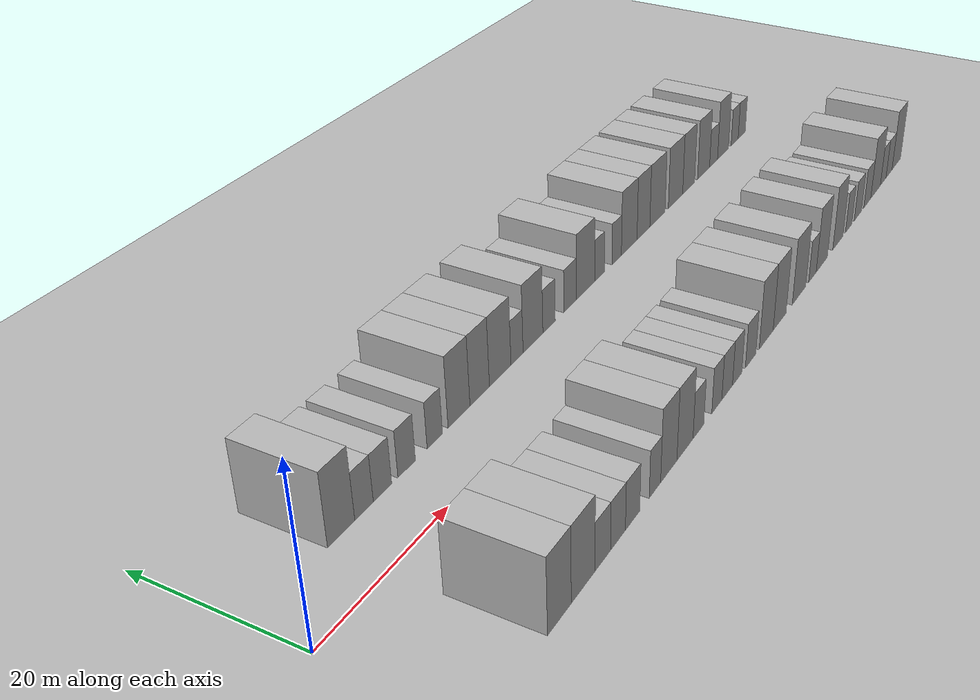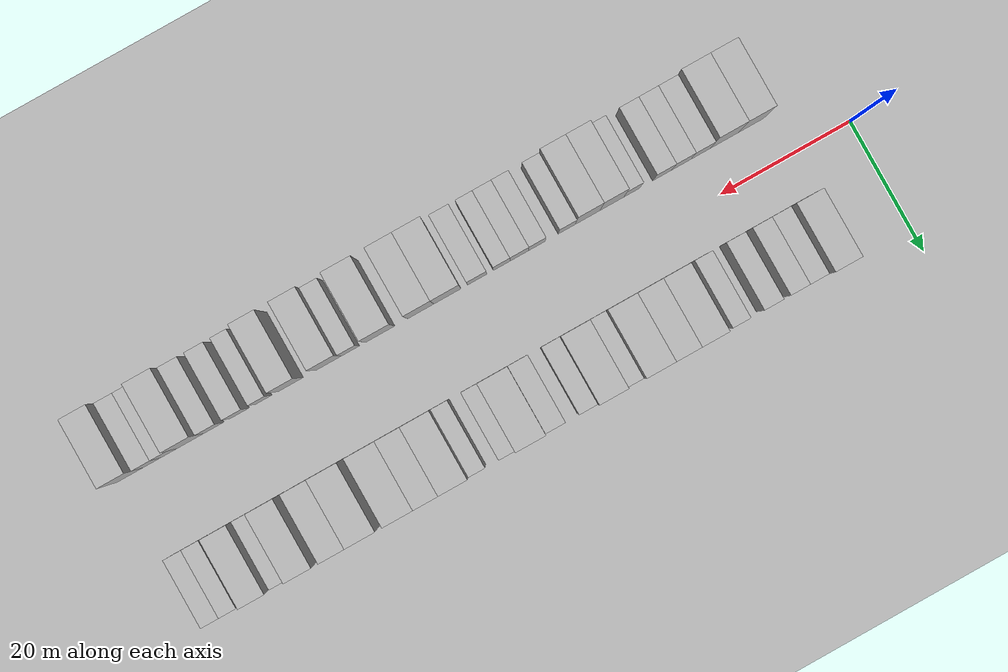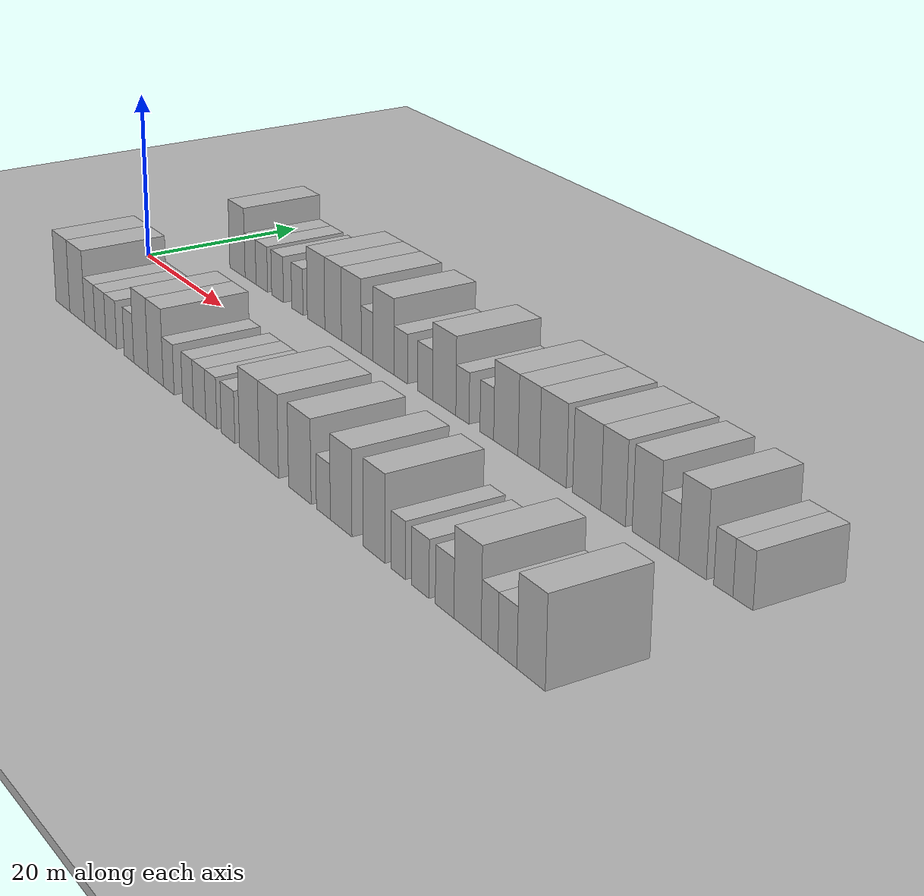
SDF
<sdf version="1.6">
 <world name="default">
  <include><name>ground_plane_1</name><uri>model://HANNAS_ground_plane</uri></include>
  <include>
   <name>ground_plane_2</name>
   <uri>model://HANNAS_ground_plane</uri>
   <pose>100 0 0  0 0 0</pose>
  </include>
  <model name="building_1">
   <static>1</static>
   <pose>11.9980 11.0000 0 0.000000 0.000000 1.570796</pose>
   <link name="link">
    <pose>0 0 4.50 0 0 0</pose>
    <collision name="collision"><geometry><box><size>10.0000 3.9959 9.0000</size></box></geometry></collision>
    <visual name="visual">
     <cast_shadows>0</cast_shadows>
     <geometry><box><size>10.0000 3.9959 9.0000</size></box></geometry>
     <material>
      <script>
       <uri>model://HANNAS_wall/materials/scripts</uri>
       <uri>model://HANNAS_wall/materials/textures</uri>
       <name>vrc/HANNAS_wall</name>
      </script>
     </material>
    </visual>
   </link>
  </model>
  <model name="building_2">
   <static>1</static>
   <pose>15.4072 11.0000 0 0.000000 0.000000 1.570796</pose>
   <link name="link">
    <pose>0 0 3.00 0 0 0</pose>
    <collision name="collision"><geometry><box><size>10.0000 2.8226 6.0000</size></box></geometry></collision>
    <visual name="visual">
     <cast_shadows>0</cast_shadows>
     <geometry><box><size>10.0000 2.8226 6.0000</size></box></geometry>
     <material>
      <script>
       <uri>model://HANNAS_wall/materials/scripts</uri>
       <uri>model://HANNAS_wall/materials/textures</uri>
       <name>vrc/HANNAS_wall</name>
      </script>
     </material>
    </visual>
   </link>
  </model>
  <model name="building_3">
   <static>1</static>
   <pose>18.2727 11.0000 0 0.000000 0.000000 1.570796</pose>
   <link name="link">
    <pose>0 0 3.00 0 0 0</pose>
    <collision name="collision"><geometry><box><size>10.0000 2.9083 6.0000</size></box></geometry></collision>
    <visual name="visual">
     <cast_shadows>0</cast_shadows>
     <geometry><box><size>10.0000 2.9083 6.0000</size></box></geometry>
     <material>
      <script>
       <uri>model://HANNAS_wall/materials/scripts</uri>
       <uri>model://HANNAS_wall/materials/textures</uri>
       <name>vrc/HANNAS_wall</name>
      </script>
     </material>
    </visual>
   </link>
  </model>
  <model name="building_4">
   <static>1</static>
   <pose>22.1791 11.0000 0 0.000000 0.000000 1.570796</pose>
   <link name="link">
    <pose>0 0 3.00 0 0 0</pose>
    <collision name="collision"><geometry><box><size>10.0000 2.9046 6.0000</size></box></geometry></collision>
    <visual name="visual">
     <cast_shadows>0</cast_shadows>
     <geometry><box><size>10.0000 2.9046 6.0000</size></box></geometry>
     <material>
      <script>
       <uri>model://HANNAS_wall/materials/scripts</uri>
       <uri>model://HANNAS_wall/materials/textures</uri>
       <name>vrc/HANNAS_wall</name>
      </script>
     </material>
    </visual>
   </link>
  </model>
  <model name="building_5">
   <static>1</static>
   <pose>26.9787 11.0000 0 0.000000 0.000000 1.570796</pose>
   <link name="link">
    <pose>0 0 3.00 0 0 0</pose>
    <collision name="collision"><geometry><box><size>10.0000 2.6946 6.0000</size></box></geometry></collision>
    <visual name="visual">
     <cast_shadows>0</cast_shadows>
     <geometry><box><size>10.0000 2.6946 6.0000</size></box></geometry>
     <material>
      <script>
       <uri>model://HANNAS_wall/materials/scripts</uri>
       <uri>model://HANNAS_wall/materials/textures</uri>
       <name>vrc/HANNAS_wall</name>
      </script>
     </material>
    </visual>
   </link>
  </model>
  <model name="building_6">
   <static>1</static>
   <pose>31.3501 11.0000 0 0.000000 0.000000 1.570796</pose>
   <link name="link">
    <pose>0 0 4.50 0 0 0</pose>
    <collision name="collision"><geometry><box><size>10.0000 4.0482 9.0000</size></box></geometry></collision>
    <visual name="visual">
     <cast_shadows>0</cast_shadows>
     <geometry><box><size>10.0000 4.0482 9.0000</size></box></geometry>
     <material>
      <script>
       <uri>model://HANNAS_wall/materials/scripts</uri>
       <uri>model://HANNAS_wall/materials/textures</uri>
       <name>vrc/HANNAS_wall</name>
      </script>
     </material>
    </visual>
   </link>
  </model>
  <model name="building_7">
   <static>1</static>
   <pose>35.2538 11.0000 0 0.000000 0.000000 1.570796</pose>
   <link name="link">
    <pose>0 0 4.50 0 0 0</pose>
    <collision name="collision"><geometry><box><size>10.0000 3.7592 9.0000</size></box></geometry></collision>
    <visual name="visual">
     <cast_shadows>0</cast_shadows>
     <geometry><box><size>10.0000 3.7592 9.0000</size></box></geometry>
     <material>
      <script>
       <uri>model://HANNAS_wall/materials/scripts</uri>
       <uri>model://HANNAS_wall/materials/textures</uri>
       <name>vrc/HANNAS_wall</name>
      </script>
     </material>
    </visual>
   </link>
  </model>
  <model name="building_8">
   <static>1</static>
   <pose>39.3070 11.0000 0 0.000000 0.000000 1.570796</pose>
   <link name="link">
    <pose>0 0 4.50 0 0 0</pose>
    <collision name="collision"><geometry><box><size>10.0000 4.3472 9.0000</size></box></geometry></collision>
    <visual name="visual">
     <cast_shadows>0</cast_shadows>
     <geometry><box><size>10.0000 4.3472 9.0000</size></box></geometry>
     <material>
      <script>
       <uri>model://HANNAS_wall/materials/scripts</uri>
       <uri>model://HANNAS_wall/materials/textures</uri>
       <name>vrc/HANNAS_wall</name>
      </script>
     </material>
    </visual>
   </link>
  </model>
  <model name="building_9">
   <static>1</static>
   <pose>42.7500 11.0000 0 0.000000 0.000000 1.570796</pose>
   <link name="link">
    <pose>0 0 3.00 0 0 0</pose>
    <collision name="collision"><geometry><box><size>10.0000 2.5387 6.0000</size></box></geometry></collision>
    <visual name="visual">
     <cast_shadows>0</cast_shadows>
     <geometry><box><size>10.0000 2.5387 6.0000</size></box></geometry>
     <material>
      <script>
       <uri>model://HANNAS_wall/materials/scripts</uri>
       <uri>model://HANNAS_wall/materials/textures</uri>
       <name>vrc/HANNAS_wall</name>
      </script>
     </material>
    </visual>
   </link>
  </model>
  <model name="building_10">
   <static>1</static>
   <pose>46.1682 11.0000 0 0.000000 0.000000 1.570796</pose>
   <link name="link">
    <pose>0 0 4.50 0 0 0</pose>
    <collision name="collision"><geometry><box><size>10.0000 4.2977 9.0000</size></box></geometry></collision>
    <visual name="visual">
     <cast_shadows>0</cast_shadows>
     <geometry><box><size>10.0000 4.2977 9.0000</size></box></geometry>
     <material>
      <script>
       <uri>model://HANNAS_wall/materials/scripts</uri>
       <uri>model://HANNAS_wall/materials/textures</uri>
       <name>vrc/HANNAS_wall</name>
      </script>
     </material>
    </visual>
   </link>
  </model>
  <model name="building_11">
   <static>1</static>
   <pose>49.7075 11.0000 0 0.000000 0.000000 1.570796</pose>
   <link name="link">
    <pose>0 0 3.00 0 0 0</pose>
    <collision name="collision"><geometry><box><size>10.0000 2.7811 6.0000</size></box></geometry></collision>
    <visual name="visual">
     <cast_shadows>0</cast_shadows>
     <geometry><box><size>10.0000 2.7811 6.0000</size></box></geometry>
     <material>
      <script>
       <uri>model://HANNAS_wall/materials/scripts</uri>
       <uri>model://HANNAS_wall/materials/textures</uri>
       <name>vrc/HANNAS_wall</name>
      </script>
     </material>
    </visual>
   </link>
  </model>
  <model name="building_12">
   <static>1</static>
   <pose>54.5889 11.0000 0 0.000000 0.000000 1.570796</pose>
   <link name="link">
    <pose>0 0 3.00 0 0 0</pose>
    <collision name="collision"><geometry><box><size>10.0000 2.9816 6.0000</size></box></geometry></collision>
    <visual name="visual">
     <cast_shadows>0</cast_shadows>
     <geometry><box><size>10.0000 2.9816 6.0000</size></box></geometry>
     <material>
      <script>
       <uri>model://HANNAS_wall/materials/scripts</uri>
       <uri>model://HANNAS_wall/materials/textures</uri>
       <name>vrc/HANNAS_wall</name>
      </script>
     </material>
    </visual>
   </link>
  </model>
  <model name="building_13">
   <static>1</static>
   <pose>58.3121 11.0000 0 0.000000 0.000000 1.570796</pose>
   <link name="link">
    <pose>0 0 4.50 0 0 0</pose>
    <collision name="collision"><geometry><box><size>10.0000 4.4650 9.0000</size></box></geometry></collision>
    <visual name="visual">
     <cast_shadows>0</cast_shadows>
     <geometry><box><size>10.0000 4.4650 9.0000</size></box></geometry>
     <material>
      <script>
       <uri>model://HANNAS_wall/materials/scripts</uri>
       <uri>model://HANNAS_wall/materials/textures</uri>
       <name>vrc/HANNAS_wall</name>
      </script>
     </material>
    </visual>
   </link>
  </model>
  <model name="building_14">
   <static>1</static>
   <pose>61.7764 11.0000 0 0.000000 0.000000 1.570796</pose>
   <link name="link">
    <pose>0 0 3.00 0 0 0</pose>
    <collision name="collision"><geometry><box><size>10.0000 2.4636 6.0000</size></box></geometry></collision>
    <visual name="visual">
     <cast_shadows>0</cast_shadows>
     <geometry><box><size>10.0000 2.4636 6.0000</size></box></geometry>
     <material>
      <script>
       <uri>model://HANNAS_wall/materials/scripts</uri>
       <uri>model://HANNAS_wall/materials/textures</uri>
       <name>vrc/HANNAS_wall</name>
      </script>
     </material>
    </visual>
   </link>
  </model>
  <model name="building_15">
   <static>1</static>
   <pose>66.2464 11.0000 0 0.000000 0.000000 1.570796</pose>
   <link name="link">
    <pose>0 0 3.00 0 0 0</pose>
    <collision name="collision"><geometry><box><size>10.0000 2.4763 6.0000</size></box></geometry></collision>
    <visual name="visual">
     <cast_shadows>0</cast_shadows>
     <geometry><box><size>10.0000 2.4763 6.0000</size></box></geometry>
     <material>
      <script>
       <uri>model://HANNAS_wall/materials/scripts</uri>
       <uri>model://HANNAS_wall/materials/textures</uri>
       <name>vrc/HANNAS_wall</name>
      </script>
     </material>
    </visual>
   </link>
  </model>
  <model name="building_16">
   <static>1</static>
   <pose>69.6236 11.0000 0 0.000000 0.000000 1.570796</pose>
   <link name="link">
    <pose>0 0 4.50 0 0 0</pose>
    <collision name="collision"><geometry><box><size>10.0000 4.2780 9.0000</size></box></geometry></collision>
    <visual name="visual">
     <cast_shadows>0</cast_shadows>
     <geometry><box><size>10.0000 4.2780 9.0000</size></box></geometry>
     <material>
      <script>
       <uri>model://HANNAS_wall/materials/scripts</uri>
       <uri>model://HANNAS_wall/materials/textures</uri>
       <name>vrc/HANNAS_wall</name>
      </script>
     </material>
    </visual>
   </link>
  </model>
  <model name="building_17">
   <static>1</static>
   <pose>73.5857 11.0000 0 0.000000 0.000000 1.570796</pose>
   <link name="link">
    <pose>0 0 4.50 0 0 0</pose>
    <collision name="collision"><geometry><box><size>10.0000 3.6463 9.0000</size></box></geometry></collision>
    <visual name="visual">
     <cast_shadows>0</cast_shadows>
     <geometry><box><size>10.0000 3.6463 9.0000</size></box></geometry>
     <material>
      <script>
       <uri>model://HANNAS_wall/materials/scripts</uri>
       <uri>model://HANNAS_wall/materials/textures</uri>
       <name>vrc/HANNAS_wall</name>
      </script>
     </material>
    </visual>
   </link>
  </model>
  <model name="building_18">
   <static>1</static>
   <pose>77.6428 11.0000 0 0.000000 0.000000 1.570796</pose>
   <link name="link">
    <pose>0 0 4.50 0 0 0</pose>
    <collision name="collision"><geometry><box><size>10.0000 4.4679 9.0000</size></box></geometry></collision>
    <visual name="visual">
     <cast_shadows>0</cast_shadows>
     <geometry><box><size>10.0000 4.4679 9.0000</size></box></geometry>
     <material>
      <script>
       <uri>model://HANNAS_wall/materials/scripts</uri>
       <uri>model://HANNAS_wall/materials/textures</uri>
       <name>vrc/HANNAS_wall</name>
      </script>
     </material>
    </visual>
   </link>
  </model>
  <model name="building_19">
   <static>1</static>
   <pose>83.0998 11.0000 0 0.000000 0.000000 1.570796</pose>
   <link name="link">
    <pose>0 0 4.50 0 0 0</pose>
    <collision name="collision"><geometry><box><size>10.0000 4.4460 9.0000</size></box></geometry></collision>
    <visual name="visual">
     <cast_shadows>0</cast_shadows>
     <geometry><box><size>10.0000 4.4460 9.0000</size></box></geometry>
     <material>
      <script>
       <uri>model://HANNAS_wall/materials/scripts</uri>
       <uri>model://HANNAS_wall/materials/textures</uri>
       <name>vrc/HANNAS_wall</name>
      </script>
     </material>
    </visual>
   </link>
  </model>
  <model name="building_20">
   <static>1</static>
   <pose>87.2193 11.0000 0 0.000000 0.000000 1.570796</pose>
   <link name="link">
    <pose>0 0 4.50 0 0 0</pose>
    <collision name="collision"><geometry><box><size>10.0000 3.7931 9.0000</size></box></geometry></collision>
    <visual name="visual">
     <cast_shadows>0</cast_shadows>
     <geometry><box><size>10.0000 3.7931 9.0000</size></box></geometry>
     <material>
      <script>
       <uri>model://HANNAS_wall/materials/scripts</uri>
       <uri>model://HANNAS_wall/materials/textures</uri>
       <name>vrc/HANNAS_wall</name>
      </script>
     </material>
    </visual>
   </link>
  </model>
  <model name="building_21">
   <static>1</static>
   <pose>92.1273 11.0000 0 0.000000 0.000000 1.570796</pose>
   <link name="link">
    <pose>0 0 4.50 0 0 0</pose>
    <collision name="collision"><geometry><box><size>10.0000 4.0228 9.0000</size></box></geometry></collision>
    <visual name="visual">
     <cast_shadows>0</cast_shadows>
     <geometry><box><size>10.0000 4.0228 9.0000</size></box></geometry>
     <material>
      <script>
       <uri>model://HANNAS_wall/materials/scripts</uri>
       <uri>model://HANNAS_wall/materials/textures</uri>
       <name>vrc/HANNAS_wall</name>
      </script>
     </material>
    </visual>
   </link>
  </model>
  <model name="building_22">
   <static>1</static>
   <pose>95.5092 11.0000 0 0.000000 0.000000 1.570796</pose>
   <link name="link">
    <pose>0 0 3.00 0 0 0</pose>
    <collision name="collision"><geometry><box><size>10.0000 2.7410 6.0000</size></box></geometry></collision>
    <visual name="visual">
     <cast_shadows>0</cast_shadows>
     <geometry><box><size>10.0000 2.7410 6.0000</size></box></geometry>
     <material>
      <script>
       <uri>model://HANNAS_wall/materials/scripts</uri>
       <uri>model://HANNAS_wall/materials/textures</uri>
       <name>vrc/HANNAS_wall</name>
      </script>
     </material>
    </visual>
   </link>
  </model>
  <model name="building_23">
   <static>1</static>
   <pose>98.7910 11.0000 0 0.000000 0.000000 1.570796</pose>
   <link name="link">
    <pose>0 0 4.50 0 0 0</pose>
    <collision name="collision"><geometry><box><size>10.0000 3.8228 9.0000</size></box></geometry></collision>
    <visual name="visual">
     <cast_shadows>0</cast_shadows>
     <geometry><box><size>10.0000 3.8228 9.0000</size></box></geometry>
     <material>
      <script>
       <uri>model://HANNAS_wall/materials/scripts</uri>
       <uri>model://HANNAS_wall/materials/textures</uri>
       <name>vrc/HANNAS_wall</name>
      </script>
     </material>
    </visual>
   </link>
  </model>
  <model name="building_24">
   <static>1</static>
   <pose>102.9884 11.0000 0 0.000000 0.000000 1.570796</pose>
   <link name="link">
    <pose>0 0 3.00 0 0 0</pose>
    <collision name="collision"><geometry><box><size>10.0000 2.5720 6.0000</size></box></geometry></collision>
    <visual name="visual">
     <cast_shadows>0</cast_shadows>
     <geometry><box><size>10.0000 2.5720 6.0000</size></box></geometry>
     <material>
      <script>
       <uri>model://HANNAS_wall/materials/scripts</uri>
       <uri>model://HANNAS_wall/materials/textures</uri>
       <name>vrc/HANNAS_wall</name>
      </script>
     </material>
    </visual>
   </link>
  </model>
  <model name="building_25">
   <static>1</static>
   <pose>105.5951 11.0000 0 0.000000 0.000000 1.570796</pose>
   <link name="link">
    <pose>0 0 3.00 0 0 0</pose>
    <collision name="collision"><geometry><box><size>10.0000 2.6414 6.0000</size></box></geometry></collision>
    <visual name="visual">
     <cast_shadows>0</cast_shadows>
     <geometry><box><size>10.0000 2.6414 6.0000</size></box></geometry>
     <material>
      <script>
       <uri>model://HANNAS_wall/materials/scripts</uri>
       <uri>model://HANNAS_wall/materials/textures</uri>
       <name>vrc/HANNAS_wall</name>
      </script>
     </material>
    </visual>
   </link>
  </model>
  <model name="building_50">
   <static>1</static>
   <pose>12.0243 -11.0000 0 0.000000 0.000000 1.570796</pose>
   <link name="link">
    <pose>0 0 4.50 0 0 0</pose>
    <collision name="collision"><geometry><box><size>10.0000 4.0487 9.0000</size></box></geometry></collision>
    <visual name="visual">
     <cast_shadows>0</cast_shadows>
     <geometry><box><size>10.0000 4.0487 9.0000</size></box></geometry>
     <material>
      <script>
       <uri>model://HANNAS_wall/materials/scripts</uri>
       <uri>model://HANNAS_wall/materials/textures</uri>
       <name>vrc/HANNAS_wall</name>
      </script>
     </material>
    </visual>
   </link>
  </model>
  <model name="building_51">
   <static>1</static>
   <pose>16.1841 -11.0000 0 0.000000 0.000000 1.570796</pose>
   <link name="link">
    <pose>0 0 4.50 0 0 0</pose>
    <collision name="collision"><geometry><box><size>10.0000 4.2708 9.0000</size></box></geometry></collision>
    <visual name="visual">
     <cast_shadows>0</cast_shadows>
     <geometry><box><size>10.0000 4.2708 9.0000</size></box></geometry>
     <material>
      <script>
       <uri>model://HANNAS_wall/materials/scripts</uri>
       <uri>model://HANNAS_wall/materials/textures</uri>
       <name>vrc/HANNAS_wall</name>
      </script>
     </material>
    </visual>
   </link>
  </model>
  <model name="building_52">
   <static>1</static>
   <pose>19.7863 -11.0000 0 0.000000 0.000000 1.570796</pose>
   <link name="link">
    <pose>0 0 3.00 0 0 0</pose>
    <collision name="collision"><geometry><box><size>10.0000 2.9337 6.0000</size></box></geometry></collision>
    <visual name="visual">
     <cast_shadows>0</cast_shadows>
     <geometry><box><size>10.0000 2.9337 6.0000</size></box></geometry>
     <material>
      <script>
       <uri>model://HANNAS_wall/materials/scripts</uri>
       <uri>model://HANNAS_wall/materials/textures</uri>
       <name>vrc/HANNAS_wall</name>
      </script>
     </material>
    </visual>
   </link>
  </model>
  <model name="building_53">
   <static>1</static>
   <pose>22.7130 -11.0000 0 0.000000 0.000000 1.570796</pose>
   <link name="link">
    <pose>0 0 3.00 0 0 0</pose>
    <collision name="collision"><geometry><box><size>10.0000 2.9197 6.0000</size></box></geometry></collision>
    <visual name="visual">
     <cast_shadows>0</cast_shadows>
     <geometry><box><size>10.0000 2.9197 6.0000</size></box></geometry>
     <material>
      <script>
       <uri>model://HANNAS_wall/materials/scripts</uri>
       <uri>model://HANNAS_wall/materials/textures</uri>
       <name>vrc/HANNAS_wall</name>
      </script>
     </material>
    </visual>
   </link>
  </model>
  <model name="building_54">
   <static>1</static>
   <pose>25.6211 -11.0000 0 0.000000 0.000000 1.570796</pose>
   <link name="link">
    <pose>0 0 3.00 0 0 0</pose>
    <collision name="collision"><geometry><box><size>10.0000 2.8964 6.0000</size></box></geometry></collision>
    <visual name="visual">
     <cast_shadows>0</cast_shadows>
     <geometry><box><size>10.0000 2.8964 6.0000</size></box></geometry>
     <material>
      <script>
       <uri>model://HANNAS_wall/materials/scripts</uri>
       <uri>model://HANNAS_wall/materials/textures</uri>
       <name>vrc/HANNAS_wall</name>
      </script>
     </material>
    </visual>
   </link>
  </model>
  <model name="building_55">
   <static>1</static>
   <pose>30.2984 -11.0000 0 0.000000 0.000000 1.570796</pose>
   <link name="link">
    <pose>0 0 3.00 0 0 0</pose>
    <collision name="collision"><geometry><box><size>10.0000 2.4581 6.0000</size></box></geometry></collision>
    <visual name="visual">
     <cast_shadows>0</cast_shadows>
     <geometry><box><size>10.0000 2.4581 6.0000</size></box></geometry>
     <material>
      <script>
       <uri>model://HANNAS_wall/materials/scripts</uri>
       <uri>model://HANNAS_wall/materials/textures</uri>
       <name>vrc/HANNAS_wall</name>
      </script>
     </material>
    </visual>
   </link>
  </model>
  <model name="building_56">
   <static>1</static>
   <pose>33.3546 -11.0000 0 0.000000 0.000000 1.570796</pose>
   <link name="link">
    <pose>0 0 4.50 0 0 0</pose>
    <collision name="collision"><geometry><box><size>10.0000 3.6543 9.0000</size></box></geometry></collision>
    <visual name="visual">
     <cast_shadows>0</cast_shadows>
     <geometry><box><size>10.0000 3.6543 9.0000</size></box></geometry>
     <material>
      <script>
       <uri>model://HANNAS_wall/materials/scripts</uri>
       <uri>model://HANNAS_wall/materials/textures</uri>
       <name>vrc/HANNAS_wall</name>
      </script>
     </material>
    </visual>
   </link>
  </model>
  <model name="building_57">
   <static>1</static>
   <pose>37.0646 -11.0000 0 0.000000 0.000000 1.570796</pose>
   <link name="link">
    <pose>0 0 4.50 0 0 0</pose>
    <collision name="collision"><geometry><box><size>10.0000 3.7656 9.0000</size></box></geometry></collision>
    <visual name="visual">
     <cast_shadows>0</cast_shadows>
     <geometry><box><size>10.0000 3.7656 9.0000</size></box></geometry>
     <material>
      <script>
       <uri>model://HANNAS_wall/materials/scripts</uri>
       <uri>model://HANNAS_wall/materials/textures</uri>
       <name>vrc/HANNAS_wall</name>
      </script>
     </material>
    </visual>
   </link>
  </model>
  <model name="building_58">
   <static>1</static>
   <pose>40.2543 -11.0000 0 0.000000 0.000000 1.570796</pose>
   <link name="link">
    <pose>0 0 3.00 0 0 0</pose>
    <collision name="collision"><geometry><box><size>10.0000 2.6139 6.0000</size></box></geometry></collision>
    <visual name="visual">
     <cast_shadows>0</cast_shadows>
     <geometry><box><size>10.0000 2.6139 6.0000</size></box></geometry>
     <material>
      <script>
       <uri>model://HANNAS_wall/materials/scripts</uri>
       <uri>model://HANNAS_wall/materials/textures</uri>
       <name>vrc/HANNAS_wall</name>
      </script>
     </material>
    </visual>
   </link>
  </model>
  <model name="building_59">
   <static>1</static>
   <pose>44.8411 -11.0000 0 0.000000 0.000000 1.570796</pose>
   <link name="link">
    <pose>0 0 3.00 0 0 0</pose>
    <collision name="collision"><geometry><box><size>10.0000 2.5596 6.0000</size></box></geometry></collision>
    <visual name="visual">
     <cast_shadows>0</cast_shadows>
     <geometry><box><size>10.0000 2.5596 6.0000</size></box></geometry>
     <material>
      <script>
       <uri>model://HANNAS_wall/materials/scripts</uri>
       <uri>model://HANNAS_wall/materials/textures</uri>
       <name>vrc/HANNAS_wall</name>
      </script>
     </material>
    </visual>
   </link>
  </model>
  <model name="building_60">
   <static>1</static>
   <pose>47.5301 -11.0000 0 0.000000 0.000000 1.570796</pose>
   <link name="link">
    <pose>0 0 3.00 0 0 0</pose>
    <collision name="collision"><geometry><box><size>10.0000 2.8185 6.0000</size></box></geometry></collision>
    <visual name="visual">
     <cast_shadows>0</cast_shadows>
     <geometry><box><size>10.0000 2.8185 6.0000</size></box></geometry>
     <material>
      <script>
       <uri>model://HANNAS_wall/materials/scripts</uri>
       <uri>model://HANNAS_wall/materials/textures</uri>
       <name>vrc/HANNAS_wall</name>
      </script>
     </material>
    </visual>
   </link>
  </model>
  <model name="building_61">
   <static>1</static>
   <pose>50.2014 -11.0000 0 0.000000 0.000000 1.570796</pose>
   <link name="link">
    <pose>0 0 3.00 0 0 0</pose>
    <collision name="collision"><geometry><box><size>10.0000 2.5240 6.0000</size></box></geometry></collision>
    <visual name="visual">
     <cast_shadows>0</cast_shadows>
     <geometry><box><size>10.0000 2.5240 6.0000</size></box></geometry>
     <material>
      <script>
       <uri>model://HANNAS_wall/materials/scripts</uri>
       <uri>model://HANNAS_wall/materials/textures</uri>
       <name>vrc/HANNAS_wall</name>
      </script>
     </material>
    </visual>
   </link>
  </model>
  <model name="building_62">
   <static>1</static>
   <pose>53.9348 -11.0000 0 0.000000 0.000000 1.570796</pose>
   <link name="link">
    <pose>0 0 3.00 0 0 0</pose>
    <collision name="collision"><geometry><box><size>10.0000 2.9428 6.0000</size></box></geometry></collision>
    <visual name="visual">
     <cast_shadows>0</cast_shadows>
     <geometry><box><size>10.0000 2.9428 6.0000</size></box></geometry>
     <material>
      <script>
       <uri>model://HANNAS_wall/materials/scripts</uri>
       <uri>model://HANNAS_wall/materials/textures</uri>
       <name>vrc/HANNAS_wall</name>
      </script>
     </material>
    </visual>
   </link>
  </model>
  <model name="building_63">
   <static>1</static>
   <pose>58.4784 -11.0000 0 0.000000 0.000000 1.570796</pose>
   <link name="link">
    <pose>0 0 4.50 0 0 0</pose>
    <collision name="collision"><geometry><box><size>10.0000 4.1446 9.0000</size></box></geometry></collision>
    <visual name="visual">
     <cast_shadows>0</cast_shadows>
     <geometry><box><size>10.0000 4.1446 9.0000</size></box></geometry>
     <material>
      <script>
       <uri>model://HANNAS_wall/materials/scripts</uri>
       <uri>model://HANNAS_wall/materials/textures</uri>
       <name>vrc/HANNAS_wall</name>
      </script>
     </material>
    </visual>
   </link>
  </model>
  <model name="building_64">
   <static>1</static>
   <pose>62.5418 -11.0000 0 0.000000 0.000000 1.570796</pose>
   <link name="link">
    <pose>0 0 4.50 0 0 0</pose>
    <collision name="collision"><geometry><box><size>10.0000 3.9822 9.0000</size></box></geometry></collision>
    <visual name="visual">
     <cast_shadows>0</cast_shadows>
     <geometry><box><size>10.0000 3.9822 9.0000</size></box></geometry>
     <material>
      <script>
       <uri>model://HANNAS_wall/materials/scripts</uri>
       <uri>model://HANNAS_wall/materials/textures</uri>
       <name>vrc/HANNAS_wall</name>
      </script>
     </material>
    </visual>
   </link>
  </model>
  <model name="building_65">
   <static>1</static>
   <pose>68.7320 -11.0000 0 0.000000 0.000000 1.570796</pose>
   <link name="link">
    <pose>0 0 4.50 0 0 0</pose>
    <collision name="collision"><geometry><box><size>10.0000 4.3982 9.0000</size></box></geometry></collision>
    <visual name="visual">
     <cast_shadows>0</cast_shadows>
     <geometry><box><size>10.0000 4.3982 9.0000</size></box></geometry>
     <material>
      <script>
       <uri>model://HANNAS_wall/materials/scripts</uri>
       <uri>model://HANNAS_wall/materials/textures</uri>
       <name>vrc/HANNAS_wall</name>
      </script>
     </material>
    </visual>
   </link>
  </model>
  <model name="building_66">
   <static>1</static>
   <pose>73.2419 -11.0000 0 0.000000 0.000000 1.570796</pose>
   <link name="link">
    <pose>0 0 3.00 0 0 0</pose>
    <collision name="collision"><geometry><box><size>10.0000 2.6218 6.0000</size></box></geometry></collision>
    <visual name="visual">
     <cast_shadows>0</cast_shadows>
     <geometry><box><size>10.0000 2.6218 6.0000</size></box></geometry>
     <material>
      <script>
       <uri>model://HANNAS_wall/materials/scripts</uri>
       <uri>model://HANNAS_wall/materials/textures</uri>
       <name>vrc/HANNAS_wall</name>
      </script>
     </material>
    </visual>
   </link>
  </model>
  <model name="building_67">
   <static>1</static>
   <pose>76.5276 -11.0000 0 0.000000 0.000000 1.570796</pose>
   <link name="link">
    <pose>0 0 4.50 0 0 0</pose>
    <collision name="collision"><geometry><box><size>10.0000 3.9495 9.0000</size></box></geometry></collision>
    <visual name="visual">
     <cast_shadows>0</cast_shadows>
     <geometry><box><size>10.0000 3.9495 9.0000</size></box></geometry>
     <material>
      <script>
       <uri>model://HANNAS_wall/materials/scripts</uri>
       <uri>model://HANNAS_wall/materials/textures</uri>
       <name>vrc/HANNAS_wall</name>
      </script>
     </material>
    </visual>
   </link>
  </model>
  <model name="building_68">
   <static>1</static>
   <pose>82.3985 -11.0000 0 0.000000 0.000000 1.570796</pose>
   <link name="link">
    <pose>0 0 4.50 0 0 0</pose>
    <collision name="collision"><geometry><box><size>10.0000 3.7924 9.0000</size></box></geometry></collision>
    <visual name="visual">
     <cast_shadows>0</cast_shadows>
     <geometry><box><size>10.0000 3.7924 9.0000</size></box></geometry>
     <material>
      <script>
       <uri>model://HANNAS_wall/materials/scripts</uri>
       <uri>model://HANNAS_wall/materials/textures</uri>
       <name>vrc/HANNAS_wall</name>
      </script>
     </material>
    </visual>
   </link>
  </model>
  <model name="building_69">
   <static>1</static>
   <pose>86.5154 -11.0000 0 0.000000 0.000000 1.570796</pose>
   <link name="link">
    <pose>0 0 3.00 0 0 0</pose>
    <collision name="collision"><geometry><box><size>10.0000 2.4414 6.0000</size></box></geometry></collision>
    <visual name="visual">
     <cast_shadows>0</cast_shadows>
     <geometry><box><size>10.0000 2.4414 6.0000</size></box></geometry>
     <material>
      <script>
       <uri>model://HANNAS_wall/materials/scripts</uri>
       <uri>model://HANNAS_wall/materials/textures</uri>
       <name>vrc/HANNAS_wall</name>
      </script>
     </material>
    </visual>
   </link>
  </model>
  <model name="building_70">
   <static>1</static>
   <pose>90.1692 -11.0000 0 0.000000 0.000000 1.570796</pose>
   <link name="link">
    <pose>0 0 3.00 0 0 0</pose>
    <collision name="collision"><geometry><box><size>10.0000 2.8662 6.0000</size></box></geometry></collision>
    <visual name="visual">
     <cast_shadows>0</cast_shadows>
     <geometry><box><size>10.0000 2.8662 6.0000</size></box></geometry>
     <material>
      <script>
       <uri>model://HANNAS_wall/materials/scripts</uri>
       <uri>model://HANNAS_wall/materials/textures</uri>
       <name>vrc/HANNAS_wall</name>
      </script>
     </material>
    </visual>
   </link>
  </model>
  <model name="building_71">
   <static>1</static>
   <pose>94.0641 -11.0000 0 0.000000 0.000000 1.570796</pose>
   <link name="link">
    <pose>0 0 3.00 0 0 0</pose>
    <collision name="collision"><geometry><box><size>10.0000 2.9234 6.0000</size></box></geometry></collision>
    <visual name="visual">
     <cast_shadows>0</cast_shadows>
     <geometry><box><size>10.0000 2.9234 6.0000</size></box></geometry>
     <material>
      <script>
       <uri>model://HANNAS_wall/materials/scripts</uri>
       <uri>model://HANNAS_wall/materials/textures</uri>
       <name>vrc/HANNAS_wall</name>
      </script>
     </material>
    </visual>
   </link>
  </model>
  <model name="building_72">
   <static>1</static>
   <pose>97.5936 -11.0000 0 0.000000 0.000000 1.570796</pose>
   <link name="link">
    <pose>0 0 4.50 0 0 0</pose>
    <collision name="collision"><geometry><box><size>10.0000 4.1357 9.0000</size></box></geometry></collision>
    <visual name="visual">
     <cast_shadows>0</cast_shadows>
     <geometry><box><size>10.0000 4.1357 9.0000</size></box></geometry>
     <material>
      <script>
       <uri>model://HANNAS_wall/materials/scripts</uri>
       <uri>model://HANNAS_wall/materials/textures</uri>
       <name>vrc/HANNAS_wall</name>
      </script>
     </material>
    </visual>
   </link>
  </model>
  <model name="building_73">
   <static>1</static>
   <pose>100.9111 -11.0000 0 0.000000 0.000000 1.570796</pose>
   <link name="link">
    <pose>0 0 3.00 0 0 0</pose>
    <collision name="collision"><geometry><box><size>10.0000 2.4992 6.0000</size></box></geometry></collision>
    <visual name="visual">
     <cast_shadows>0</cast_shadows>
     <geometry><box><size>10.0000 2.4992 6.0000</size></box></geometry>
     <material>
      <script>
       <uri>model://HANNAS_wall/materials/scripts</uri>
       <uri>model://HANNAS_wall/materials/textures</uri>
       <name>vrc/HANNAS_wall</name>
      </script>
     </material>
    </visual>
   </link>
  </model>
  <model name="building_74">
   <static>1</static>
   <pose>103.5220 -11.0000 0 0.000000 0.000000 1.570796</pose>
   <link name="link">
    <pose>0 0 3.00 0 0 0</pose>
    <collision name="collision"><geometry><box><size>10.0000 2.7226 6.0000</size></box></geometry></collision>
    <visual name="visual">
     <cast_shadows>0</cast_shadows>
     <geometry><box><size>10.0000 2.7226 6.0000</size></box></geometry>
     <material>
      <script>
       <uri>model://HANNAS_wall/materials/scripts</uri>
       <uri>model://HANNAS_wall/materials/textures</uri>
       <name>vrc/HANNAS_wall</name>
      </script>
     </material>
    </visual>
   </link>
  </model>
  <model name="building_75">
   <static>1</static>
   <pose>106.8657 -11.0000 0 0.000000 0.000000 1.570796</pose>
   <link name="link">
    <pose>0 0 4.50 0 0 0</pose>
    <collision name="collision"><geometry><box><size>10.0000 3.9648 9.0000</size></box></geometry></collision>
    <visual name="visual">
     <cast_shadows>0</cast_shadows>
     <geometry><box><size>10.0000 3.9648 9.0000</size></box></geometry>
     <material>
      <script>
       <uri>model://HANNAS_wall/materials/scripts</uri>
       <uri>model://HANNAS_wall/materials/textures</uri>
       <name>vrc/HANNAS_wall</name>
      </script>
     </material>
    </visual>
   </link>
  </model>
 </world>
</sdf>
